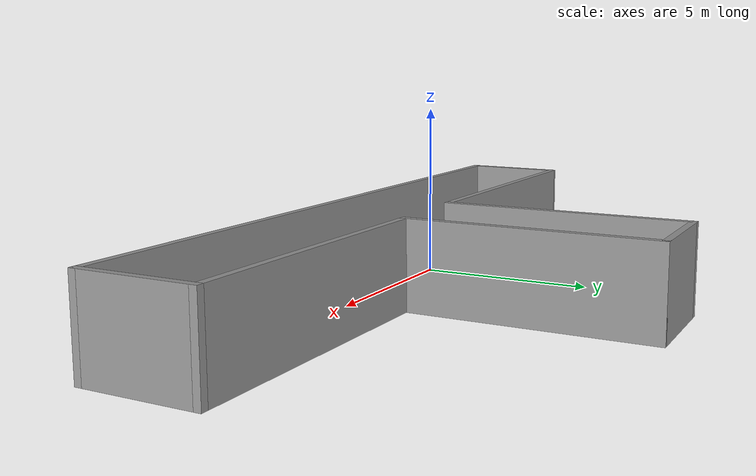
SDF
<?xml version='1.0'?>
<sdf version='1.4'>
  <model name='Testcase'>
    <link name='Wall_10'>
      <collision name='Wall_10_Collision'>
        <geometry>
          <box>
            <size>8.43183 0.2 2.5</size>
          </box>
        </geometry>
        <pose>0 0 1.25 0 -0 0</pose>
      </collision>
      <visual name='Wall_10_Visual'>
        <pose>0 0 1.25 0 -0 0</pose>
        <geometry>
          <box>
            <size>8.43183 0.2 2.5</size>
          </box>
        </geometry>
        <material>
          <script>
            <uri>file://media/materials/scripts/gazebo.material</uri>
            <name>Gazebo/Grey</name>
          </script>
        </material>
      </visual>
      <velocity_decay>
        <linear>0</linear>
        <angular>0</angular>
      </velocity_decay>
      <pose>8.81132 1.61836 0 0 -0 0</pose>
    </link>
    <link name='Wall_11'>
      <collision name='Wall_11_Collision'>
        <geometry>
          <box>
            <size>3.29573 0.2 2.5</size>
          </box>
        </geometry>
        <pose>0 0 1.25 0 -0 0</pose>
      </collision>
      <visual name='Wall_11_Visual'>
        <pose>0 0 1.25 0 -0 0</pose>
        <geometry>
          <box>
            <size>3.29573 0.2 2.5</size>
          </box>
        </geometry>
        <material>
          <script>
            <uri>file://media/materials/scripts/gazebo.material</uri>
            <name>Gazebo/Grey</name>
          </script>
        </material>
      </visual>
      <velocity_decay>
        <linear>0</linear>
        <angular>0</angular>
      </velocity_decay>
      <pose>12.9272 0.070498 0 0 0 -1.5708</pose>
    </link>
    <link name='Wall_12'>
      <collision name='Wall_12_Collision'>
        <geometry>
          <box>
            <size>19.8649 0.2 2.5</size>
          </box>
        </geometry>
        <pose>0 0 1.25 0 -0 0</pose>
      </collision>
      <visual name='Wall_12_Visual'>
        <pose>0 0 1.25 0 -0 0</pose>
        <geometry>
          <box>
            <size>19.8649 0.2 2.5</size>
          </box>
        </geometry>
        <material>
          <script>
            <uri>file://media/materials/scripts/gazebo.material</uri>
            <name>Gazebo/Grey</name>
          </script>
        </material>
      </visual>
      <velocity_decay>
        <linear>0</linear>
        <angular>0</angular>
      </velocity_decay>
      <pose>3.09477 -1.47737 0 0 -0 3.14159</pose>
    </link>
    <link name='Wall_13'>
      <collision name='Wall_13_Collision'>
        <geometry>
          <box>
            <size>3.19102 0.2 2.5</size>
          </box>
        </geometry>
        <pose>0 0 1.25 0 -0 0</pose>
      </collision>
      <visual name='Wall_13_Visual'>
        <pose>0 0 1.25 0 -0 0</pose>
        <geometry>
          <box>
            <size>3.19102 0.2 2.5</size>
          </box>
        </geometry>
        <material>
          <script>
            <uri>file://media/materials/scripts/gazebo.material</uri>
            <name>Gazebo/Grey</name>
          </script>
        </material>
      </visual>
      <velocity_decay>
        <linear>0</linear>
        <angular>0</angular>
      </velocity_decay>
      <pose>-6.70252 0.017729 0 0 -0 1.54727</pose>
    </link>
    <link name='Wall_6'>
      <collision name='Wall_6_Collision'>
        <geometry>
          <box>
            <size>8.71326 0.2 2.5</size>
          </box>
        </geometry>
        <pose>0 0 1.25 0 -0 0</pose>
      </collision>
      <visual name='Wall_6_Visual'>
        <pose>0 0 1.25 0 -0 0</pose>
        <geometry>
          <box>
            <size>8.71326 0.2 2.5</size>
          </box>
        </geometry>
        <material>
          <script>
            <uri>file://media/materials/scripts/gazebo.material</uri>
            <name>Gazebo/Grey</name>
          </script>
        </material>
      </visual>
      <velocity_decay>
        <linear>0</linear>
        <angular>0</angular>
      </velocity_decay>
      <pose>-2.41071 1.51283 0 0 -0 0</pose>
    </link>
    <link name='Wall_7'>
      <collision name='Wall_7_Collision'>
        <geometry>
          <box>
            <size>7.09504 0.2 2.5</size>
          </box>
        </geometry>
        <pose>0 0 1.25 0 -0 0</pose>
      </collision>
      <visual name='Wall_7_Visual'>
        <pose>0 0 1.25 0 -0 0</pose>
        <geometry>
          <box>
            <size>7.09504 0.2 2.5</size>
          </box>
        </geometry>
        <material>
          <script>
            <uri>file://media/materials/scripts/gazebo.material</uri>
            <name>Gazebo/Grey</name>
          </script>
        </material>
      </visual>
      <velocity_decay>
        <linear>0</linear>
        <angular>0</angular>
      </velocity_decay>
      <pose>1.84592 4.96035 0 0 -0 1.5708</pose>
    </link>
    <link name='Wall_8'>
      <collision name='Wall_8_Collision'>
        <geometry>
          <box>
            <size>3.04948 0.2 2.5</size>
          </box>
        </geometry>
        <pose>0 0 1.25 0 -0 0</pose>
      </collision>
      <visual name='Wall_8_Visual'>
        <pose>0 0 1.25 0 -0 0</pose>
        <geometry>
          <box>
            <size>3.04948 0.2 2.5</size>
          </box>
        </geometry>
        <material>
          <script>
            <uri>file://media/materials/scripts/gazebo.material</uri>
            <name>Gazebo/Grey</name>
          </script>
        </material>
      </visual>
      <velocity_decay>
        <linear>0</linear>
        <angular>0</angular>
      </velocity_decay>
      <pose>3.27066 8.40786 0 0 -0 0</pose>
    </link>
    <link name='Wall_9'>
      <collision name='Wall_9_Collision'>
        <geometry>
          <box>
            <size>6.9895 0.2 2.5</size>
          </box>
        </geometry>
        <pose>0 0 1.25 0 -0 0</pose>
      </collision>
      <visual name='Wall_9_Visual'>
        <pose>0 0 1.25 0 -0 0</pose>
        <geometry>
          <box>
            <size>6.9895 0.2 2.5</size>
          </box>
        </geometry>
        <material>
          <script>
            <uri>file://media/materials/scripts/gazebo.material</uri>
            <name>Gazebo/Grey</name>
          </script>
        </material>
      </visual>
      <velocity_decay>
        <linear>0</linear>
        <angular>0</angular>
      </velocity_decay>
      <pose>4.6954 5.01311 0 0 0 -1.5708</pose>
    </link>
    <static>1</static>
  </model>
</sdf>
